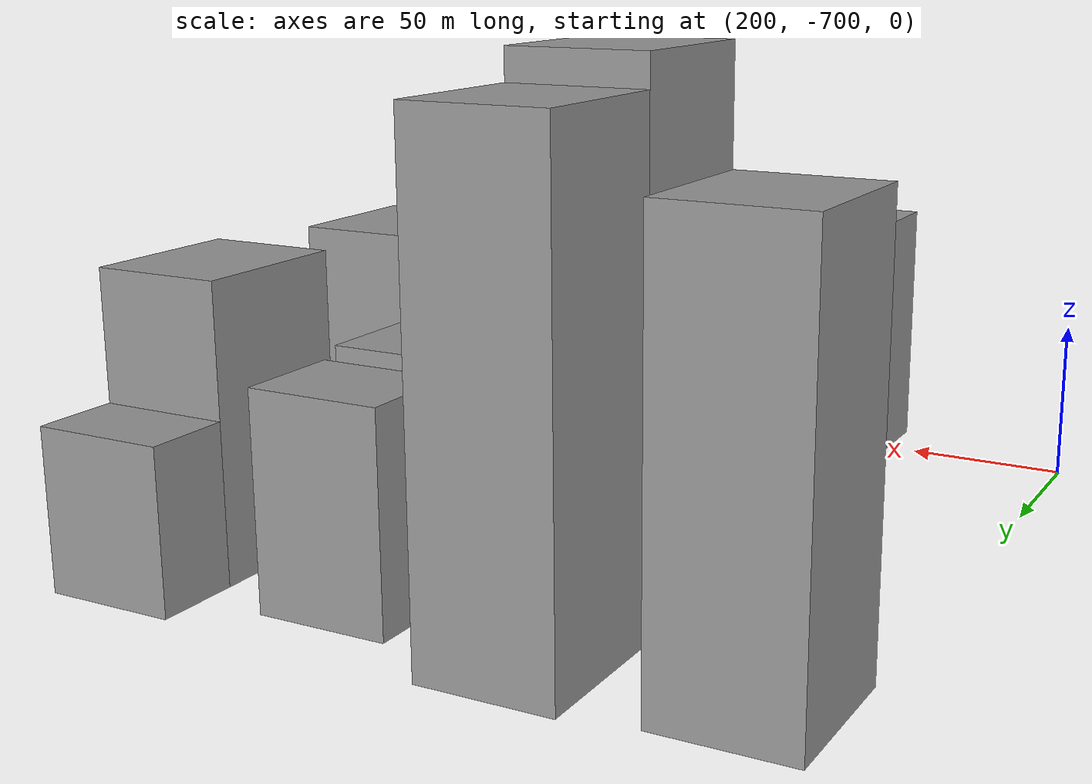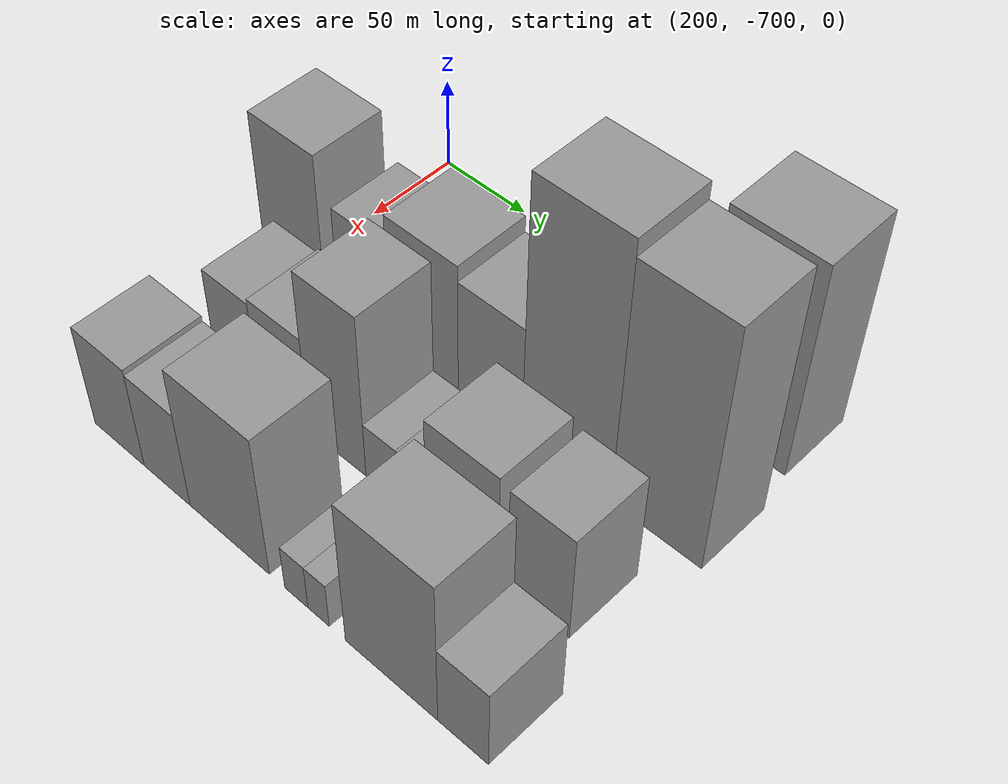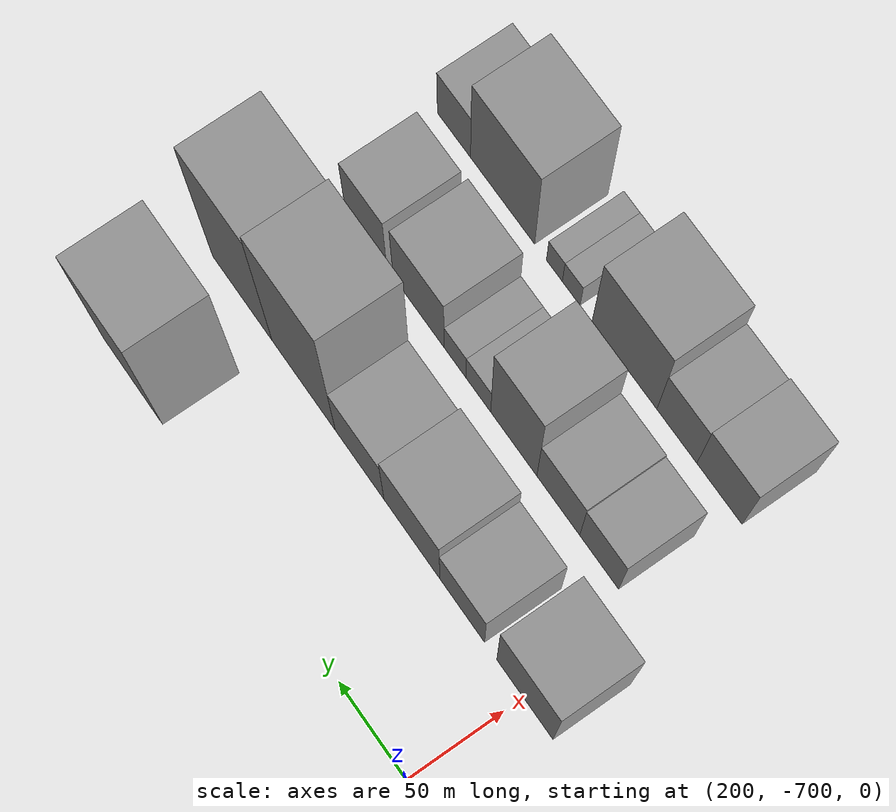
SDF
<sdf version="1.6">
 <world name="default">
  <model name="building_127">
   <static>1</static>
   <pose>220.0000 -490.3939 0 0.000000 0.000000 0.000000</pose>
   <link name="link">
    <pose>0 0 61.50 0 0 0</pose>
    <collision name="collision"><geometry><box><size>40.0000 46.7900 123.0000</size></box></geometry></collision>
    <visual name="visual">
     <cast_shadows>0</cast_shadows>
     <geometry><box><size>40.0000 46.7900 123.0000</size></box></geometry>
     <material>
      <script>
       <uri>model://grey_wall/materials/scripts</uri>
       <uri>model://grey_wall/materials/textures</uri>
       <name>vrc/grey_wall</name>
      </script>
     </material>
    </visual>
   </link>
  </model>
  <model name="building_173">
   <static>1</static>
   <pose>280.0000 -701.0826 0 0.000000 0.000000 0.000000</pose>
   <link name="link">
    <pose>0 0 40.50 0 0 0</pose>
    <collision name="collision"><geometry><box><size>40.0000 41.0090 81.0000</size></box></geometry></collision>
    <visual name="visual">
     <cast_shadows>0</cast_shadows>
     <geometry><box><size>40.0000 41.0090 81.0000</size></box></geometry>
     <material>
      <script>
       <uri>model://grey_wall/materials/scripts</uri>
       <uri>model://grey_wall/materials/textures</uri>
       <name>vrc/grey_wall</name>
      </script>
     </material>
    </visual>
   </link>
  </model>
  <model name="building_174">
   <static>1</static>
   <pose>280.0000 -655.0791 0 0.000000 0.000000 0.000000</pose>
   <link name="link">
    <pose>0 0 28.50 0 0 0</pose>
    <collision name="collision"><geometry><box><size>40.0000 32.9980 57.0000</size></box></geometry></collision>
    <visual name="visual">
     <cast_shadows>0</cast_shadows>
     <geometry><box><size>40.0000 32.9980 57.0000</size></box></geometry>
     <material>
      <script>
       <uri>model://grey_wall/materials/scripts</uri>
       <uri>model://grey_wall/materials/textures</uri>
       <name>vrc/grey_wall</name>
      </script>
     </material>
    </visual>
   </link>
  </model>
  <model name="building_175">
   <static>1</static>
   <pose>280.0000 -617.4718 0 0.000000 0.000000 0.000000</pose>
   <link name="link">
    <pose>0 0 37.50 0 0 0</pose>
    <collision name="collision"><geometry><box><size>40.0000 42.2165 75.0000</size></box></geometry></collision>
    <visual name="visual">
     <cast_shadows>0</cast_shadows>
     <geometry><box><size>40.0000 42.2165 75.0000</size></box></geometry>
     <material>
      <script>
       <uri>model://grey_wall/materials/scripts</uri>
       <uri>model://grey_wall/materials/textures</uri>
       <name>vrc/grey_wall</name>
      </script>
     </material>
    </visual>
   </link>
  </model>
  <model name="building_176">
   <static>1</static>
   <pose>280.0000 -577.7357 0 0.000000 0.000000 0.000000</pose>
   <link name="link">
    <pose>0 0 33.00 0 0 0</pose>
    <collision name="collision"><geometry><box><size>40.0000 37.2557 66.0000</size></box></geometry></collision>
    <visual name="visual">
     <cast_shadows>0</cast_shadows>
     <geometry><box><size>40.0000 37.2557 66.0000</size></box></geometry>
     <material>
      <script>
       <uri>model://grey_wall/materials/scripts</uri>
       <uri>model://grey_wall/materials/textures</uri>
       <name>vrc/grey_wall</name>
      </script>
     </material>
    </visual>
   </link>
  </model>
  <model name="building_177">
   <static>1</static>
   <pose>280.0000 -534.4441 0 0.000000 0.000000 0.000000</pose>
   <link name="link">
    <pose>0 0 75.00 0 0 0</pose>
    <collision name="collision"><geometry><box><size>40.0000 49.3274 150.0000</size></box></geometry></collision>
    <visual name="visual">
     <cast_shadows>0</cast_shadows>
     <geometry><box><size>40.0000 49.3274 150.0000</size></box></geometry>
     <material>
      <script>
       <uri>model://grey_wall/materials/scripts</uri>
       <uri>model://grey_wall/materials/textures</uri>
       <name>vrc/grey_wall</name>
      </script>
     </material>
    </visual>
   </link>
  </model>
  <model name="building_178">
   <static>1</static>
   <pose>280.0000 -486.1781 0 0.000000 0.000000 0.000000</pose>
   <link name="link">
    <pose>0 0 70.50 0 0 0</pose>
    <collision name="collision"><geometry><box><size>40.0000 47.2047 141.0000</size></box></geometry></collision>
    <visual name="visual">
     <cast_shadows>0</cast_shadows>
     <geometry><box><size>40.0000 47.2047 141.0000</size></box></geometry>
     <material>
      <script>
       <uri>model://grey_wall/materials/scripts</uri>
       <uri>model://grey_wall/materials/textures</uri>
       <name>vrc/grey_wall</name>
      </script>
     </material>
    </visual>
   </link>
  </model>
  <model name="building_235">
   <static>1</static>
   <pose>340.0000 -671.5606 0 0.000000 0.000000 0.000000</pose>
   <link name="link">
    <pose>0 0 27.00 0 0 0</pose>
    <collision name="collision"><geometry><box><size>40.0000 28.4691 54.0000</size></box></geometry></collision>
    <visual name="visual">
     <cast_shadows>0</cast_shadows>
     <geometry><box><size>40.0000 28.4691 54.0000</size></box></geometry>
     <material>
      <script>
       <uri>model://grey_wall/materials/scripts</uri>
       <uri>model://grey_wall/materials/textures</uri>
       <name>vrc/grey_wall</name>
      </script>
     </material>
    </visual>
   </link>
  </model>
  <model name="building_236">
   <static>1</static>
   <pose>340.0000 -641.4350 0 0.000000 0.000000 0.000000</pose>
   <link name="link">
    <pose>0 0 28.50 0 0 0</pose>
    <collision name="collision"><geometry><box><size>40.0000 31.7821 57.0000</size></box></geometry></collision>
    <visual name="visual">
     <cast_shadows>0</cast_shadows>
     <geometry><box><size>40.0000 31.7821 57.0000</size></box></geometry>
     <material>
      <script>
       <uri>model://grey_wall/materials/scripts</uri>
       <uri>model://grey_wall/materials/textures</uri>
       <name>vrc/grey_wall</name>
      </script>
     </material>
    </visual>
   </link>
  </model>
  <model name="building_237">
   <static>1</static>
   <pose>340.0000 -608.2324 0 0.000000 0.000000 0.000000</pose>
   <link name="link">
    <pose>0 0 48.00 0 0 0</pose>
    <collision name="collision"><geometry><box><size>40.0000 34.6230 96.0000</size></box></geometry></collision>
    <visual name="visual">
     <cast_shadows>0</cast_shadows>
     <geometry><box><size>40.0000 34.6230 96.0000</size></box></geometry>
     <material>
      <script>
       <uri>model://grey_wall/materials/scripts</uri>
       <uri>model://grey_wall/materials/textures</uri>
       <name>vrc/grey_wall</name>
      </script>
     </material>
    </visual>
   </link>
  </model>
  <model name="building_238">
   <static>1</static>
   <pose>340.0000 -581.6152 0 0.000000 0.000000 0.000000</pose>
   <link name="link">
    <pose>0 0 16.50 0 0 0</pose>
    <collision name="collision"><geometry><box><size>40.0000 18.6115 33.0000</size></box></geometry></collision>
    <visual name="visual">
     <cast_shadows>0</cast_shadows>
     <geometry><box><size>40.0000 18.6115 33.0000</size></box></geometry>
     <material>
      <script>
       <uri>model://grey_wall/materials/scripts</uri>
       <uri>model://grey_wall/materials/textures</uri>
       <name>vrc/grey_wall</name>
      </script>
     </material>
    </visual>
   </link>
  </model>
  <model name="building_239">
   <static>1</static>
   <pose>340.0000 -564.0219 0 0.000000 0.000000 0.000000</pose>
   <link name="link">
    <pose>0 0 16.50 0 0 0</pose>
    <collision name="collision"><geometry><box><size>40.0000 16.5750 33.0000</size></box></geometry></collision>
    <visual name="visual">
     <cast_shadows>0</cast_shadows>
     <geometry><box><size>40.0000 16.5750 33.0000</size></box></geometry>
     <material>
      <script>
       <uri>model://grey_wall/materials/scripts</uri>
       <uri>model://grey_wall/materials/textures</uri>
       <name>vrc/grey_wall</name>
      </script>
     </material>
    </visual>
   </link>
  </model>
  <model name="building_240">
   <static>1</static>
   <pose>340.0000 -535.9977 0 0.000000 0.000000 0.000000</pose>
   <link name="link">
    <pose>0 0 33.00 0 0 0</pose>
    <collision name="collision"><geometry><box><size>40.0000 39.4734 66.0000</size></box></geometry></collision>
    <visual name="visual">
     <cast_shadows>0</cast_shadows>
     <geometry><box><size>40.0000 39.4734 66.0000</size></box></geometry>
     <material>
      <script>
       <uri>model://grey_wall/materials/scripts</uri>
       <uri>model://grey_wall/materials/textures</uri>
       <name>vrc/grey_wall</name>
      </script>
     </material>
    </visual>
   </link>
  </model>
  <model name="building_241">
   <static>1</static>
   <pose>340.0000 -495.0600 0 0.000000 0.000000 0.000000</pose>
   <link name="link">
    <pose>0 0 31.50 0 0 0</pose>
    <collision name="collision"><geometry><box><size>40.0000 32.4020 63.0000</size></box></geometry></collision>
    <visual name="visual">
     <cast_shadows>0</cast_shadows>
     <geometry><box><size>40.0000 32.4020 63.0000</size></box></geometry>
     <material>
      <script>
       <uri>model://grey_wall/materials/scripts</uri>
       <uri>model://grey_wall/materials/textures</uri>
       <name>vrc/grey_wall</name>
      </script>
     </material>
    </visual>
   </link>
  </model>
  <model name="building_287">
   <static>1</static>
   <pose>400.0000 -677.1003 0 0.000000 0.000000 0.000000</pose>
   <link name="link">
    <pose>0 0 30.00 0 0 0</pose>
    <collision name="collision"><geometry><box><size>40.0000 32.7151 60.0000</size></box></geometry></collision>
    <visual name="visual">
     <cast_shadows>0</cast_shadows>
     <geometry><box><size>40.0000 32.7151 60.0000</size></box></geometry>
     <material>
      <script>
       <uri>model://grey_wall/materials/scripts</uri>
       <uri>model://grey_wall/materials/textures</uri>
       <name>vrc/grey_wall</name>
      </script>
     </material>
    </visual>
   </link>
  </model>
  <model name="building_288">
   <static>1</static>
   <pose>400.0000 -646.0608 0 0.000000 0.000000 0.000000</pose>
   <link name="link">
    <pose>0 0 28.50 0 0 0</pose>
    <collision name="collision"><geometry><box><size>40.0000 29.3638 57.0000</size></box></geometry></collision>
    <visual name="visual">
     <cast_shadows>0</cast_shadows>
     <geometry><box><size>40.0000 29.3638 57.0000</size></box></geometry>
     <material>
      <script>
       <uri>model://grey_wall/materials/scripts</uri>
       <uri>model://grey_wall/materials/textures</uri>
       <name>vrc/grey_wall</name>
      </script>
     </material>
    </visual>
   </link>
  </model>
  <model name="building_289">
   <static>1</static>
   <pose>400.0000 -607.2482 0 0.000000 0.000000 0.000000</pose>
   <link name="link">
    <pose>0 0 42.00 0 0 0</pose>
    <collision name="collision"><geometry><box><size>40.0000 48.2615 84.0000</size></box></geometry></collision>
    <visual name="visual">
     <cast_shadows>0</cast_shadows>
     <geometry><box><size>40.0000 48.2615 84.0000</size></box></geometry>
     <material>
      <script>
       <uri>model://grey_wall/materials/scripts</uri>
       <uri>model://grey_wall/materials/textures</uri>
       <name>vrc/grey_wall</name>
      </script>
     </material>
    </visual>
   </link>
  </model>
  <model name="building_290">
   <static>1</static>
   <pose>400.0000 -567.3912 0 0.000000 0.000000 0.000000</pose>
   <link name="link">
    <pose>0 0 13.50 0 0 0</pose>
    <collision name="collision"><geometry><box><size>40.0000 13.4525 27.0000</size></box></geometry></collision>
    <visual name="visual">
     <cast_shadows>0</cast_shadows>
     <geometry><box><size>40.0000 13.4525 27.0000</size></box></geometry>
     <material>
      <script>
       <uri>model://grey_wall/materials/scripts</uri>
       <uri>model://grey_wall/materials/textures</uri>
       <name>vrc/grey_wall</name>
      </script>
     </material>
    </visual>
   </link>
  </model>
  <model name="building_291">
   <static>1</static>
   <pose>400.0000 -554.6394 0 0.000000 0.000000 0.000000</pose>
   <link name="link">
    <pose>0 0 13.50 0 0 0</pose>
    <collision name="collision"><geometry><box><size>40.0000 12.0509 27.0000</size></box></geometry></collision>
    <visual name="visual">
     <cast_shadows>0</cast_shadows>
     <geometry><box><size>40.0000 12.0509 27.0000</size></box></geometry>
     <material>
      <script>
       <uri>model://grey_wall/materials/scripts</uri>
       <uri>model://grey_wall/materials/textures</uri>
       <name>vrc/grey_wall</name>
      </script>
     </material>
    </visual>
   </link>
  </model>
  <model name="building_292">
   <static>1</static>
   <pose>400.0000 -514.8739 0 0.000000 0.000000 0.000000</pose>
   <link name="link">
    <pose>0 0 43.50 0 0 0</pose>
    <collision name="collision"><geometry><box><size>40.0000 49.4802 87.0000</size></box></geometry></collision>
    <visual name="visual">
     <cast_shadows>0</cast_shadows>
     <geometry><box><size>40.0000 49.4802 87.0000</size></box></geometry>
     <material>
      <script>
       <uri>model://grey_wall/materials/scripts</uri>
       <uri>model://grey_wall/materials/textures</uri>
       <name>vrc/grey_wall</name>
      </script>
     </material>
    </visual>
   </link>
  </model>
  <model name="building_293">
   <static>1</static>
   <pose>400.0000 -477.2247 0 0.000000 0.000000 0.000000</pose>
   <link name="link">
    <pose>0 0 24.00 0 0 0</pose>
    <collision name="collision"><geometry><box><size>40.0000 25.8182 48.0000</size></box></geometry></collision>
    <visual name="visual">
     <cast_shadows>0</cast_shadows>
     <geometry><box><size>40.0000 25.8182 48.0000</size></box></geometry>
     <material>
      <script>
       <uri>model://grey_wall/materials/scripts</uri>
       <uri>model://grey_wall/materials/textures</uri>
       <name>vrc/grey_wall</name>
      </script>
     </material>
    </visual>
   </link>
  </model>
 </world>
</sdf>
